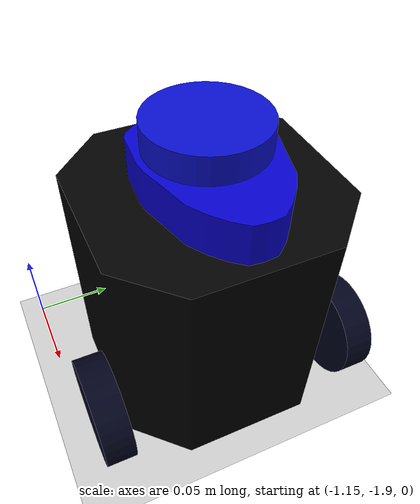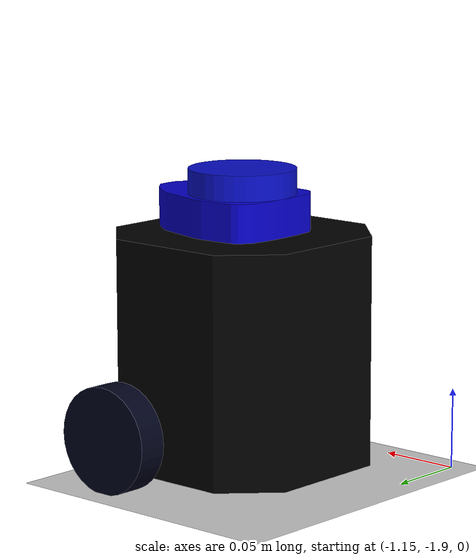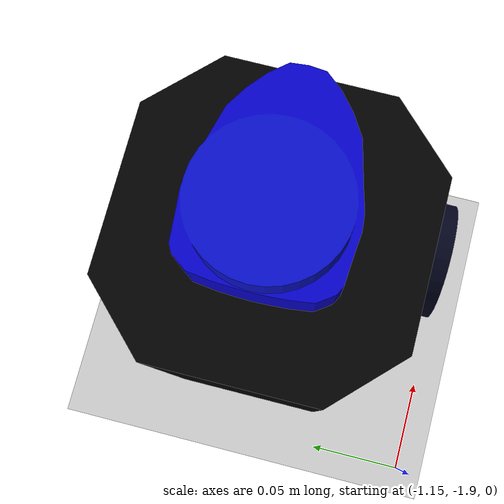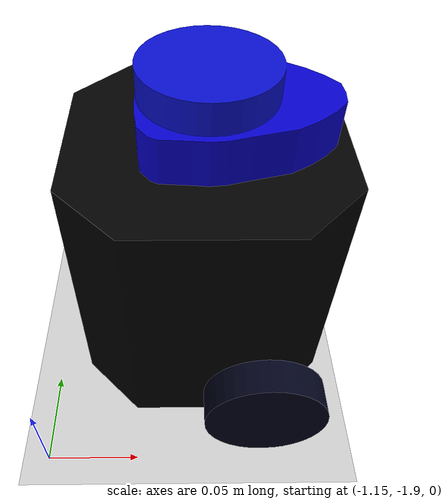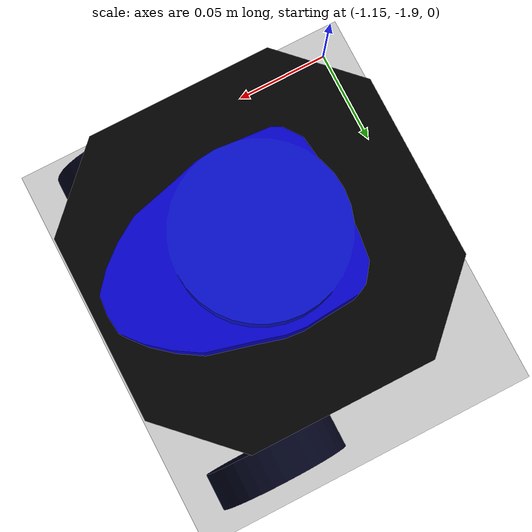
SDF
<sdf version="1.7">
 <world name="default">
  <model name="ground_plane">
   <static>1</static>
   <link name="link">
    <collision name="collision">
     <geometry><plane><normal>0 0 1</normal><size>100 100</size></plane></geometry>
     <surface><friction><ode><mu>100</mu><mu2>50</mu2></ode></friction></surface>
    </collision>
    <visual name="visual">
     <cast_shadows>0</cast_shadows>
     <geometry><plane><normal>0 0 1</normal><size>100 100</size></plane></geometry>
     <material>
      <script><uri>file://media/materials/scripts/gazebo.material</uri><name>Gazebo/Grey</name></script>
     </material>
    </visual>
   </link>
  </model>
  <model name="tb1">
   <pose>-1.02998 -1.80561 0.008881 2e-05 0.001441 1.4e-05</pose>
   <link name="base_footprint">
    <inertial>
     <inertia><ixx>1</ixx><ixy>0</ixy><ixz>0</ixz><iyy>1</iyy><iyz>0</iyz><izz>1</izz></inertia>
     <mass>1</mass>
    </inertial>
   </link>
   <link name="base_link">
    <inertial>
     <pose>-0.032 0 0.07 0 -0 0</pose>
     <inertia>
      <ixx>0.723974</ixx>
      <ixy>4.6864e-10</ixy>
      <ixz>-1.09526e-08</ixz>
      <iyy>0.723974</iyy>
      <iyz>2.85826e-09</iyz>
      <izz>0.65305</izz>
     </inertia>
     <mass>0.825735</mass>
    </inertial>
    <collision name="base_collision">
     <pose>-0.032 0 0.07 0 -0 0</pose>
     <geometry><box><size>0.14 0.14 0.14</size></box></geometry>
    </collision>
    <visual name="base_visual">
     <pose>-0.032 0 0 0 -0 0</pose>
     <geometry>
      <mesh><uri>model://turtlebot3_burger/meshes/burger_base.dae</uri><scale>0.001 0.001 0.001</scale></mesh>
     </geometry>
    </visual>
   </link>
   <link name="imu_link">
    <sensor name="tb3_imu" type="imu">
     <always_on>1</always_on>
     <update_rate>30</update_rate>
     <imu>
      <angular_velocity>
       <x><noise type="gaussian"><mean>0</mean><stddev>0.0002</stddev></noise></x>
       <y><noise type="gaussian"><mean>0</mean><stddev>0.0002</stddev></noise></y>
       <z><noise type="gaussian"><mean>0</mean><stddev>0.0002</stddev></noise></z>
      </angular_velocity>
      <linear_acceleration>
       <x><noise type="gaussian"><mean>0</mean><stddev>0.017</stddev></noise></x>
       <y><noise type="gaussian"><mean>0</mean><stddev>0.017</stddev></noise></y>
       <z><noise type="gaussian"><mean>0</mean><stddev>0.017</stddev></noise></z>
      </linear_acceleration>
     </imu>
     <plugin name="turtlebot3_imu" filename="libgazebo_ros_imu_sensor.so">
      <ros><remapping>~/out:=imu</remapping><namespace>/tb1</namespace></ros>
     </plugin>
    </sensor>
    <inertial>
     <inertia><ixx>1</ixx><ixy>0</ixy><ixz>0</ixz><iyy>1</iyy><iyz>0</iyz><izz>1</izz></inertia>
     <mass>1</mass>
    </inertial>
   </link>
   <link name="base_scan">
    <inertial>
     <pose>-0.02 0 0.161 0 -0 0</pose>
     <inertia><ixx>0.001</ixx><ixy>0</ixy><ixz>0</ixz><iyy>0.001</iyy><iyz>0</iyz><izz>0.001</izz></inertia>
     <mass>0.114</mass>
    </inertial>
    <collision name="lidar_sensor_collision">
     <pose>-0.02 0 0.161 0 -0 0</pose>
     <geometry><cylinder><radius>0.0508</radius><length>0.055</length></cylinder></geometry>
    </collision>
    <visual name="lidar_sensor_visual">
     <pose>-0.032 0 0.171 0 -0 0</pose>
     <geometry>
      <mesh><uri>model://turtlebot3_burger/meshes/lds.dae</uri><scale>0.001 0.001 0.001</scale></mesh>
     </geometry>
    </visual>
    <sensor name="hls_lfcd_lds" type="ray">
     <always_on>1</always_on>
     <visualize>1</visualize>
     <pose>-0.032 0 0.171 0 -0 0</pose>
     <update_rate>5</update_rate>
     <ray>
      <scan>
       <horizontal>
        <samples>360</samples>
        <resolution>1</resolution>
        <min_angle>0</min_angle>
        <max_angle>6.28</max_angle>
       </horizontal>
       <vertical><samples>1</samples><min_angle>0</min_angle><max_angle>0</max_angle></vertical>
      </scan>
      <range><min>0.12</min><max>1</max><resolution>0.015</resolution></range>
      <noise><type>gaussian</type><mean>0</mean><stddev>0.01</stddev></noise>
     </ray>
     <plugin name="turtlebot3_laserscan" filename="libgazebo_ros_ray_sensor.so">
      <ros><remapping>~/out:=scan</remapping><visualize>1</visualize><namespace>/tb1</namespace></ros>
      <output_type>sensor_msgs/LaserScan</output_type>
      <frame_name>base_scan</frame_name>
     </plugin>
    </sensor>
   </link>
   <link name="wheel_left_link">
    <inertial>
     <pose>0 0.08 0.023 -1.57 0 0</pose>
     <inertia>
      <ixx>0.00181582</ixx>
      <ixy>-9.3392e-12</ixy>
      <ixz>1.04909e-11</ixz>
      <iyy>0.00329221</iyy>
      <iyz>5.75694e-11</iyz>
      <izz>0.00181582</izz>
     </inertia>
     <mass>0.0284989</mass>
    </inertial>
    <collision name="wheel_left_collision">
     <pose>0 0.08 0.023 -1.57 0 0</pose>
     <geometry><cylinder><radius>0.033</radius><length>0.018</length></cylinder></geometry>
     <surface>
      <friction>
       <ode><mu>100000</mu><mu2>100000</mu2><fdir1>0 0 0</fdir1><slip1>0</slip1><slip2>0</slip2></ode>
      </friction>
      <contact>
       <ode>
        <soft_cfm>0</soft_cfm>
        <soft_erp>0.2</soft_erp>
        <kp>100000</kp>
        <kd>1</kd>
        <max_vel>0.01</max_vel>
        <min_depth>0.001</min_depth>
       </ode>
      </contact>
     </surface>
    </collision>
    <visual name="wheel_left_visual">
     <pose>0 0.08 0.023 0 -0 0</pose>
     <geometry>
      <mesh><uri>model://turtlebot3_burger/meshes/tire.dae</uri><scale>0.001 0.001 0.001</scale></mesh>
     </geometry>
    </visual>
   </link>
   <link name="wheel_right_link">
    <inertial>
     <pose>0 -0.08 0.023 -1.57 0 0</pose>
     <inertia>
      <ixx>0.00181582</ixx>
      <ixy>-9.3392e-12</ixy>
      <ixz>1.04909e-11</ixz>
      <iyy>0.00329221</iyy>
      <iyz>5.75694e-11</iyz>
      <izz>0.00181582</izz>
     </inertia>
     <mass>0.0284989</mass>
    </inertial>
    <collision name="wheel_right_collision">
     <pose>0 -0.08 0.023 -1.57 0 0</pose>
     <geometry><cylinder><radius>0.033</radius><length>0.018</length></cylinder></geometry>
     <surface>
      <friction>
       <ode><mu>100000</mu><mu2>100000</mu2><fdir1>0 0 0</fdir1><slip1>0</slip1><slip2>0</slip2></ode>
      </friction>
      <contact>
       <ode>
        <soft_cfm>0</soft_cfm>
        <soft_erp>0.2</soft_erp>
        <kp>100000</kp>
        <kd>1</kd>
        <max_vel>0.01</max_vel>
        <min_depth>0.001</min_depth>
       </ode>
      </contact>
     </surface>
    </collision>
    <visual name="wheel_right_visual">
     <pose>0 -0.08 0.023 0 -0 0</pose>
     <geometry>
      <mesh><uri>model://turtlebot3_burger/meshes/tire.dae</uri><scale>0.001 0.001 0.001</scale></mesh>
     </geometry>
    </visual>
   </link>
   <link name="caster_back_link">
    <pose>-0.081 0 -0.004 -1.57 0 0</pose>
    <inertial>
     <mass>0.005</mass>
     <inertia><ixx>0.001</ixx><ixy>0</ixy><ixz>0</ixz><iyy>0.001</iyy><iyz>0</iyz><izz>0.001</izz></inertia>
    </inertial>
    <collision name="collision">
     <geometry><sphere><radius>0.005</radius></sphere></geometry>
     <surface>
      <contact>
       <ode>
        <soft_cfm>0</soft_cfm>
        <soft_erp>0.2</soft_erp>
        <kp>100000</kp>
        <kd>1</kd>
        <max_vel>0.01</max_vel>
        <min_depth>0.001</min_depth>
       </ode>
      </contact>
     </surface>
    </collision>
   </link>
   <joint name="base_joint" type="fixed">
    <parent>base_footprint</parent>
    <child>base_link</child>
    <pose>0 0 0.01 0 -0 0</pose>
   </joint>
   <joint name="wheel_left_joint" type="revolute">
    <parent>base_link</parent>
    <child>wheel_left_link</child>
    <pose>0 0.08 0.023 -1.57 0 0</pose>
    <axis>
     <xyz>0 0 1</xyz>
     <limit><lower>-1e+16</lower><upper>1e+16</upper></limit>
     <dynamics><spring_reference>0</spring_reference><spring_stiffness>0</spring_stiffness></dynamics>
    </axis>
   </joint>
   <joint name="wheel_right_joint" type="revolute">
    <parent>base_link</parent>
    <child>wheel_right_link</child>
    <pose>0 -0.08 0.023 -1.57 0 0</pose>
    <axis>
     <xyz>0 0 1</xyz>
     <limit><lower>-1e+16</lower><upper>1e+16</upper></limit>
     <dynamics><spring_reference>0</spring_reference><spring_stiffness>0</spring_stiffness></dynamics>
    </axis>
   </joint>
   <joint name="caster_back_joint" type="ball"><parent>base_link</parent><child>caster_back_link</child></joint>
   <joint name="imu_joint" type="fixed">
    <parent>base_link</parent>
    <child>imu_link</child>
    <pose>-0.032 0 0.068 0 -0 0</pose>
    <axis><xyz>0 0 1</xyz><limit><lower>-1e+16</lower><upper>1e+16</upper></limit></axis>
   </joint>
   <joint name="lidar_joint" type="fixed">
    <parent>base_link</parent>
    <child>base_scan</child>
    <pose>-0.032 0 0.171 0 -0 0</pose>
    <axis><xyz>0 0 1</xyz><limit><lower>-1e+16</lower><upper>1e+16</upper></limit></axis>
   </joint>
   <plugin name="turtlebot3_diff_drive" filename="libgazebo_ros_diff_drive.so">
    <ros><remapping>/tf:=tf</remapping><namespace>/tb1</namespace></ros>
    <update_rate>10</update_rate>
    <left_joint>wheel_left_joint</left_joint>
    <right_joint>wheel_right_joint</right_joint>
    <wheel_separation>0.160</wheel_separation>
    <wheel_diameter>0.066</wheel_diameter>
    <max_wheel_torque>20</max_wheel_torque>
    <max_wheel_acceleration>1.0</max_wheel_acceleration>
    <command_topic>cmd_vel</command_topic>
    <publish_odom>1</publish_odom>
    <publish_odom_tf>1</publish_odom_tf>
    <publish_wheel_tf>0</publish_wheel_tf>
    <odometry_topic>odom</odometry_topic>
    <odometry_frame>odom</odometry_frame>
    <robot_base_frame>base_footprint</robot_base_frame>
   </plugin>
   <plugin name="turtlebot3_joint_state" filename="libgazebo_ros_joint_state_publisher.so">
    <ros><remapping>~/out:=joint_states</remapping><namespace>/tb1</namespace></ros>
    <update_rate>30</update_rate>
    <joint_name>wheel_left_joint</joint_name>
    <joint_name>wheel_right_joint</joint_name>
   </plugin>
  </model>
 </world>
</sdf>
